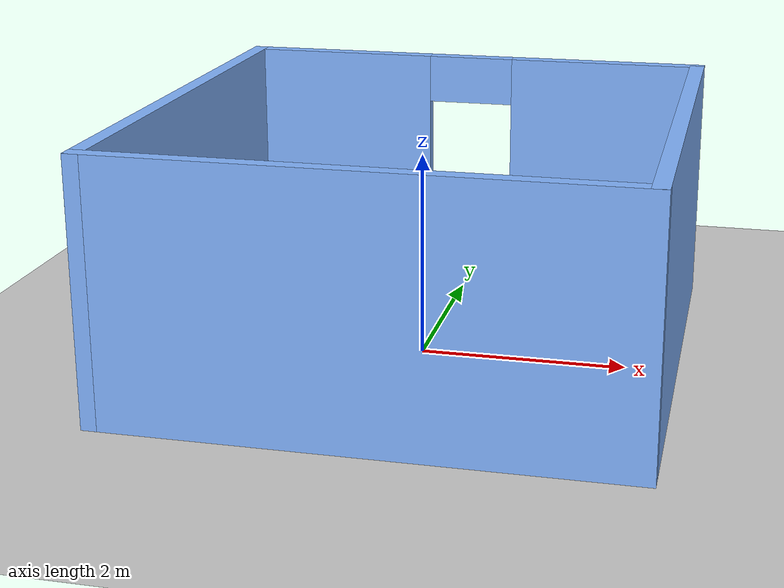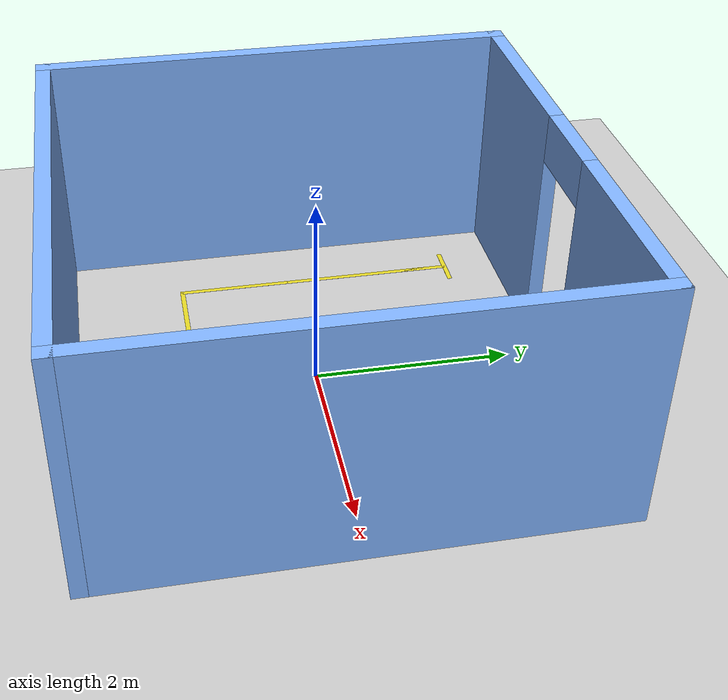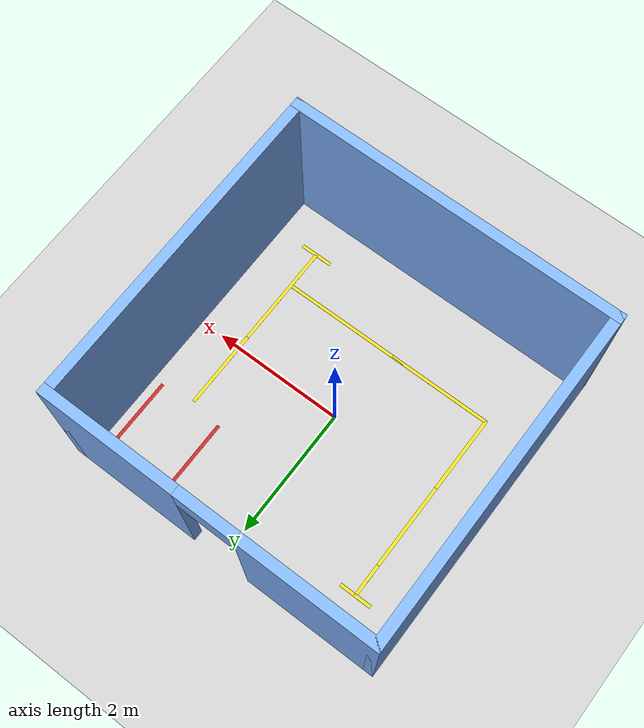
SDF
<sdf version="1.6">
 <world name="default">
  <light name="sun" type="directional">
   <pose>0 0 10 0 -0 0</pose>
   <diffuse>0.8 0.8 0.8 1</diffuse>
   <specular>0.1 0.1 0.1 1</specular>
   <attenuation>
    <range>1000</range>
    <constant>0.9</constant>
    <linear>0.01</linear>
    <quadratic>0.001</quadratic>
   </attenuation>
   <direction>-0.5 0.5 -1</direction>
   <spot><inner_angle>0</inner_angle><outer_angle>0</outer_angle><falloff>0</falloff></spot>
  </light>
  <model name="ground_plane">
   <static>1</static>
   <link name="link">
    <collision name="collision">
     <geometry><plane><normal>0 0 1</normal><size>100 100</size></plane></geometry>
     <surface><friction><ode><mu>100</mu><mu2>50</mu2></ode></friction></surface>
    </collision>
    <visual name="visual">
     <cast_shadows>0</cast_shadows>
     <geometry><plane><normal>0 0 1</normal><size>100 100</size></plane></geometry>
     <material>
      <script><uri>file://media/materials/scripts/gazebo.material</uri><name>Gazebo/Grey</name></script>
     </material>
    </visual>
   </link>
  </model>
  <gravity>0 0 -9.8</gravity>
  <magnetic_field>6e-06 2.3e-05 -4.2e-05</magnetic_field>
  <atmosphere type="adiabatic"/>
  <physics name="default_physics" default="0" type="ode">
   <max_step_size>0.001</max_step_size>
   <real_time_factor>1</real_time_factor>
   <real_time_update_rate>1000</real_time_update_rate>
  </physics>
  <scene><ambient>0.4 0.4 0.4 1</ambient><background>0.7 0.7 0.7 1</background><shadows>1</shadows></scene>
  <spherical_coordinates>
   <surface_model>EARTH_WGS84</surface_model>
   <latitude_deg>0</latitude_deg>
   <longitude_deg>0</longitude_deg>
   <elevation>0</elevation>
   <heading_deg>0</heading_deg>
  </spherical_coordinates>
  <model name="5x52">
   <link name="Wall_0">
    <pose>0 2.425 0 0 -0 0</pose>
    <visual name="Wall_0_Visual_0">
     <pose>-1.47497 0 1.25 0 -0 0</pose>
     <geometry><box><size>2.05005 0.15 2.5</size></box></geometry>
     <material>
      <script><uri>file://media/materials/scripts/gazebo.material</uri><name>Gazebo/Grey</name></script>
      <ambient>0.509804 0.705882 1 1</ambient>
     </material>
    </visual>
    <collision name="Wall_0_Collision_0">
     <geometry><box><size>2.05005 0.15 2.5</size></box></geometry>
     <pose>-1.47497 0 1.25 0 -0 0</pose>
    </collision>
    <visual name="Wall_0_Visual_1">
     <pose>1.47503 0 1.25 0 -0 0</pose>
     <geometry><box><size>2.04995 0.15 2.5</size></box></geometry>
     <material>
      <script><uri>file://media/materials/scripts/gazebo.material</uri><name>Gazebo/Grey</name></script>
      <ambient>0.509804 0.705882 1 1</ambient>
     </material>
    </visual>
    <collision name="Wall_0_Collision_1">
     <geometry><box><size>2.04995 0.15 2.5</size></box></geometry>
     <pose>1.47503 0 1.25 0 -0 0</pose>
    </collision>
    <visual name="Wall_0_Visual_2">
     <pose>5.5e-05 0 2.25 0 -0 0</pose>
     <geometry><box><size>0.9 0.15 0.5</size></box></geometry>
     <material>
      <script><uri>file://media/materials/scripts/gazebo.material</uri><name>Gazebo/Grey</name></script>
      <ambient>0.509804 0.705882 1 1</ambient>
     </material>
    </visual>
    <collision name="Wall_0_Collision_2">
     <geometry><box><size>0.9 0.15 0.5</size></box></geometry>
     <pose>5.5e-05 0 2.25 0 -0 0</pose>
    </collision>
   </link>
   <link name="Wall_1">
    <collision name="Wall_1_Collision">
     <geometry><box><size>5 0.15 2.5</size></box></geometry>
     <pose>0 0 1.25 0 -0 0</pose>
    </collision>
    <visual name="Wall_1_Visual">
     <pose>0 0 1.25 0 -0 0</pose>
     <geometry><box><size>5 0.15 2.5</size></box></geometry>
     <material>
      <script><uri>file://media/materials/scripts/gazebo.material</uri><name>Gazebo/Grey</name></script>
      <ambient>0.509804 0.705882 1 1</ambient>
     </material>
    </visual>
    <pose>2.425 0 0 0 0 -1.5708</pose>
   </link>
   <link name="Wall_2">
    <collision name="Wall_2_Collision">
     <geometry><box><size>5 0.15 2.5</size></box></geometry>
     <pose>0 0 1.25 0 -0 0</pose>
    </collision>
    <visual name="Wall_2_Visual">
     <pose>0 0 1.25 0 -0 0</pose>
     <geometry><box><size>5 0.15 2.5</size></box></geometry>
     <material>
      <script><uri>file://media/materials/scripts/gazebo.material</uri><name>Gazebo/Grey</name></script>
      <ambient>0.509804 0.705882 1 1</ambient>
     </material>
    </visual>
    <pose>0 -2.425 0 0 -0 3.14159</pose>
   </link>
   <link name="Wall_3">
    <collision name="Wall_3_Collision">
     <geometry><box><size>5 0.15 2.5</size></box></geometry>
     <pose>0 0 1.25 0 -0 0</pose>
    </collision>
    <visual name="Wall_3_Visual">
     <pose>0 0 1.25 0 -0 0</pose>
     <geometry><box><size>5 0.15 2.5</size></box></geometry>
     <material>
      <script><uri>file://media/materials/scripts/gazebo.material</uri><name>Gazebo/Grey</name></script>
      <ambient>0.509804 0.705882 1 1</ambient>
     </material>
    </visual>
    <pose>-2.425 0 0 0 -0 1.5708</pose>
   </link>
   <static>1</static>
  </model>
  <model name="oneDemoParking">
   <link name="link_1">
    <inertial>
     <mass>1</mass>
     <inertia>
      <ixx>0.166667</ixx>
      <ixy>0</ixy>
      <ixz>0</ixz>
      <iyy>0.166667</iyy>
      <iyz>0</iyz>
      <izz>0.166667</izz>
     </inertia>
    </inertial>
    <visual name="visual">
     <pose>-0.5 0 0 0 -0 0</pose>
     <geometry><box><size>0.05 1.26 0.001</size></box></geometry>
     <material>
      <lighting>1</lighting>
      <script><uri>file://media/materials/scripts/gazebo.material</uri><name>Gazebo/Red</name></script>
      <shader type="pixel"><normal_map>__default__</normal_map></shader>
     </material>
    </visual>
    <visual name="ModelPreview_3::link_1::visual_3">
     <pose>0 0.605 0 0 -0 0</pose>
     <geometry><box><size>1.05 0.05 0.001</size></box></geometry>
     <material>
      <lighting>1</lighting>
      <script><uri>file://media/materials/scripts/gazebo.material</uri><name>Gazebo/Red</name></script>
      <shader type="pixel"><normal_map>__default__</normal_map></shader>
     </material>
    </visual>
    <visual name="ModelPreview_3::link_1::visual_2">
     <pose>0.5 0 0 0 -0 0</pose>
     <geometry><box><size>0.05 1.26 0.001</size></box></geometry>
     <material>
      <lighting>1</lighting>
      <script><uri>file://media/materials/scripts/gazebo.material</uri><name>Gazebo/Red</name></script>
      <shader type="pixel"><normal_map>__default__</normal_map></shader>
     </material>
    </visual>
    <collision name="collision">
     <pose>-0.5 0 0 0 -0 0</pose>
     <geometry><box><size>0.05 1.26 0.001</size></box></geometry>
     <surface>
      <friction>
       <ode><mu>1</mu><mu2>1</mu2><fdir1>0 0 0</fdir1><slip1>0</slip1><slip2>0</slip2></ode>
       <torsional>
        <coefficient>1</coefficient>
        <patch_radius>0</patch_radius>
        <surface_radius>0</surface_radius>
        <use_patch_radius>1</use_patch_radius>
        <ode><slip>0</slip></ode>
       </torsional>
      </friction>
      <bounce><restitution_coefficient>0</restitution_coefficient><threshold>1e+06</threshold></bounce>
      <contact>
       <collide_without_contact>0</collide_without_contact>
       <collide_without_contact_bitmask>1</collide_without_contact_bitmask>
       <collide_bitmask>1</collide_bitmask>
       <ode>
        <soft_cfm>0</soft_cfm>
        <soft_erp>0.2</soft_erp>
        <kp>1e+13</kp>
        <kd>1</kd>
        <max_vel>0.01</max_vel>
        <min_depth>0</min_depth>
       </ode>
       <bullet>
        <split_impulse>1</split_impulse>
        <split_impulse_penetration_threshold>-0.01</split_impulse_penetration_threshold>
        <soft_cfm>0</soft_cfm>
        <soft_erp>0.2</soft_erp>
        <kp>1e+13</kp>
        <kd>1</kd>
       </bullet>
      </contact>
     </surface>
    </collision>
    <collision name="collision_1">
     <pose>0.5 0 0 0 -0 0</pose>
     <geometry><box><size>0.05 1.26 0.001</size></box></geometry>
     <surface>
      <friction>
       <ode><mu>1</mu><mu2>1</mu2><fdir1>0 0 0</fdir1><slip1>0</slip1><slip2>0</slip2></ode>
       <torsional>
        <coefficient>1</coefficient>
        <patch_radius>0</patch_radius>
        <surface_radius>0</surface_radius>
        <use_patch_radius>1</use_patch_radius>
        <ode><slip>0</slip></ode>
       </torsional>
      </friction>
      <bounce><restitution_coefficient>0</restitution_coefficient><threshold>1e+06</threshold></bounce>
      <contact>
       <collide_without_contact>0</collide_without_contact>
       <collide_without_contact_bitmask>1</collide_without_contact_bitmask>
       <collide_bitmask>1</collide_bitmask>
       <ode>
        <soft_cfm>0</soft_cfm>
        <soft_erp>0.2</soft_erp>
        <kp>1e+13</kp>
        <kd>1</kd>
        <max_vel>0.01</max_vel>
        <min_depth>0</min_depth>
       </ode>
       <bullet>
        <split_impulse>1</split_impulse>
        <split_impulse_penetration_threshold>-0.01</split_impulse_penetration_threshold>
        <soft_cfm>0</soft_cfm>
        <soft_erp>0.2</soft_erp>
        <kp>1e+13</kp>
        <kd>1</kd>
       </bullet>
      </contact>
     </surface>
    </collision>
    <collision name="collision_2">
     <pose>0 0.605 0 0 -0 0</pose>
     <geometry><box><size>1.05 0.05 0.001</size></box></geometry>
     <surface>
      <friction>
       <ode><mu>1</mu><mu2>1</mu2><fdir1>0 0 0</fdir1><slip1>0</slip1><slip2>0</slip2></ode>
       <torsional>
        <coefficient>1</coefficient>
        <patch_radius>0</patch_radius>
        <surface_radius>0</surface_radius>
        <use_patch_radius>1</use_patch_radius>
        <ode><slip>0</slip></ode>
       </torsional>
      </friction>
      <bounce><restitution_coefficient>0</restitution_coefficient><threshold>1e+06</threshold></bounce>
      <contact>
       <collide_without_contact>0</collide_without_contact>
       <collide_without_contact_bitmask>1</collide_without_contact_bitmask>
       <collide_bitmask>1</collide_bitmask>
       <ode>
        <soft_cfm>0</soft_cfm>
        <soft_erp>0.2</soft_erp>
        <kp>1e+13</kp>
        <kd>1</kd>
        <max_vel>0.01</max_vel>
        <min_depth>0</min_depth>
       </ode>
       <bullet>
        <split_impulse>1</split_impulse>
        <split_impulse_penetration_threshold>-0.01</split_impulse_penetration_threshold>
        <soft_cfm>0</soft_cfm>
        <soft_erp>0.2</soft_erp>
        <kp>1e+13</kp>
        <kd>1</kd>
       </bullet>
      </contact>
     </surface>
    </collision>
    <collision name="collision_3">
     <pose>-0 -0.4 0 0 -0 0</pose>
     <geometry><cylinder><radius>0.2</radius><length>0.001</length></cylinder></geometry>
     <surface>
      <friction>
       <ode><mu>1</mu><mu2>1</mu2><fdir1>0 0 0</fdir1><slip1>0</slip1><slip2>0</slip2></ode>
       <torsional>
        <coefficient>1</coefficient>
        <patch_radius>0</patch_radius>
        <surface_radius>0</surface_radius>
        <use_patch_radius>1</use_patch_radius>
        <ode><slip>0</slip></ode>
       </torsional>
      </friction>
      <bounce><restitution_coefficient>0</restitution_coefficient><threshold>1e+06</threshold></bounce>
      <contact>
       <collide_without_contact>0</collide_without_contact>
       <collide_without_contact_bitmask>1</collide_without_contact_bitmask>
       <collide_bitmask>1</collide_bitmask>
       <ode>
        <soft_cfm>0</soft_cfm>
        <soft_erp>0.2</soft_erp>
        <kp>1e+13</kp>
        <kd>1</kd>
        <max_vel>0.01</max_vel>
        <min_depth>0</min_depth>
       </ode>
       <bullet>
        <split_impulse>1</split_impulse>
        <split_impulse_penetration_threshold>-0.01</split_impulse_penetration_threshold>
        <soft_cfm>0</soft_cfm>
        <soft_erp>0.2</soft_erp>
        <kp>1e+13</kp>
        <kd>1</kd>
       </bullet>
      </contact>
     </surface>
    </collision>
   </link>
   <static>1</static>
   <pose>1.7 1.7 0 0 -0 0</pose>
  </model>
  <model name="line120cm">
   <link name="link_1">
    <inertial>
     <mass>1</mass>
     <inertia>
      <ixx>0.166667</ixx>
      <ixy>0</ixy>
      <ixz>0</ixz>
      <iyy>0.166667</iyy>
      <iyz>0</iyz>
      <izz>0.166667</izz>
     </inertia>
    </inertial>
    <visual name="visual">
     <geometry><box><size>1.2 0.05 0.001</size></box></geometry>
     <material>
      <script><uri>file://media/materials/scripts/gazebo.material</uri><name>Gazebo/Yellow</name></script>
     </material>
    </visual>
    <collision name="collision">
     <geometry><box><size>1.2 0.05 1e-05</size></box></geometry>
     <surface>
      <friction>
       <ode><mu>1</mu><mu2>1</mu2><fdir1>0 0 0</fdir1><slip1>0</slip1><slip2>0</slip2></ode>
       <torsional>
        <coefficient>1</coefficient>
        <patch_radius>0</patch_radius>
        <surface_radius>0</surface_radius>
        <use_patch_radius>1</use_patch_radius>
        <ode><slip>0</slip></ode>
       </torsional>
      </friction>
      <bounce><restitution_coefficient>0</restitution_coefficient><threshold>1e+06</threshold></bounce>
      <contact>
       <collide_without_contact>0</collide_without_contact>
       <collide_without_contact_bitmask>1</collide_without_contact_bitmask>
       <collide_bitmask>1</collide_bitmask>
       <ode>
        <soft_cfm>0</soft_cfm>
        <soft_erp>0.2</soft_erp>
        <kp>1e+13</kp>
        <kd>1</kd>
        <max_vel>0.01</max_vel>
        <min_depth>0</min_depth>
       </ode>
       <bullet>
        <split_impulse>1</split_impulse>
        <split_impulse_penetration_threshold>-0.01</split_impulse_penetration_threshold>
        <soft_cfm>0</soft_cfm>
        <soft_erp>0.2</soft_erp>
        <kp>1e+13</kp>
        <kd>1</kd>
       </bullet>
      </contact>
     </surface>
    </collision>
   </link>
   <static>1</static>
   <pose>1.7 0.4 0 0 -0 1.571</pose>
  </model>
  <model name="line160cm">
   <link name="link_1">
    <inertial>
     <mass>1</mass>
     <inertia>
      <ixx>0.166667</ixx>
      <ixy>0</ixy>
      <ixz>0</ixz>
      <iyy>0.166667</iyy>
      <iyz>0</iyz>
      <izz>0.166667</izz>
     </inertia>
    </inertial>
    <visual name="visual">
     <geometry><box><size>1.6 0.05 0.001</size></box></geometry>
     <material>
      <script><uri>file://media/materials/scripts/gazebo.material</uri><name>Gazebo/Yellow</name></script>
     </material>
    </visual>
    <collision name="collision">
     <geometry><box><size>1.6 0.05 1e-05</size></box></geometry>
     <surface>
      <friction>
       <ode><mu>1</mu><mu2>1</mu2><fdir1>0 0 0</fdir1><slip1>0</slip1><slip2>0</slip2></ode>
       <torsional>
        <coefficient>1</coefficient>
        <patch_radius>0</patch_radius>
        <surface_radius>0</surface_radius>
        <use_patch_radius>1</use_patch_radius>
        <ode><slip>0</slip></ode>
       </torsional>
      </friction>
      <bounce><restitution_coefficient>0</restitution_coefficient><threshold>1e+06</threshold></bounce>
      <contact>
       <collide_without_contact>0</collide_without_contact>
       <collide_without_contact_bitmask>1</collide_without_contact_bitmask>
       <collide_bitmask>1</collide_bitmask>
       <ode>
        <soft_cfm>0</soft_cfm>
        <soft_erp>0.2</soft_erp>
        <kp>1e+13</kp>
        <kd>1</kd>
        <max_vel>0.01</max_vel>
        <min_depth>0</min_depth>
       </ode>
       <bullet>
        <split_impulse>1</split_impulse>
        <split_impulse_penetration_threshold>-0.01</split_impulse_penetration_threshold>
        <soft_cfm>0</soft_cfm>
        <soft_erp>0.2</soft_erp>
        <kp>1e+13</kp>
        <kd>1</kd>
       </bullet>
      </contact>
     </surface>
    </collision>
   </link>
   <static>1</static>
   <pose>1.7 -1 0 0 -0 1.571</pose>
  </model>
  <model name="line50cm">
   <link name="link_1">
    <inertial>
     <mass>1</mass>
     <inertia>
      <ixx>0.166667</ixx>
      <ixy>0</ixy>
      <ixz>0</ixz>
      <iyy>0.166667</iyy>
      <iyz>0</iyz>
      <izz>0.166667</izz>
     </inertia>
    </inertial>
    <visual name="visual">
     <geometry><box><size>0.05 0.5 0.001</size></box></geometry>
     <material>
      <script><uri>file://media/materials/scripts/gazebo.material</uri><name>Gazebo/Yellow</name></script>
     </material>
    </visual>
    <collision name="collision">
     <geometry><box><size>0.05 0.5 1e-05</size></box></geometry>
     <surface>
      <friction>
       <ode><mu>1</mu><mu2>1</mu2><fdir1>0 0 0</fdir1><slip1>0</slip1><slip2>0</slip2></ode>
       <torsional>
        <coefficient>1</coefficient>
        <patch_radius>0</patch_radius>
        <surface_radius>0</surface_radius>
        <use_patch_radius>1</use_patch_radius>
        <ode><slip>0</slip></ode>
       </torsional>
      </friction>
      <bounce><restitution_coefficient>0</restitution_coefficient><threshold>1e+06</threshold></bounce>
      <contact>
       <collide_without_contact>0</collide_without_contact>
       <collide_without_contact_bitmask>1</collide_without_contact_bitmask>
       <collide_bitmask>1</collide_bitmask>
       <ode>
        <soft_cfm>0</soft_cfm>
        <soft_erp>0.2</soft_erp>
        <kp>1e+13</kp>
        <kd>1</kd>
        <max_vel>0.01</max_vel>
        <min_depth>0</min_depth>
       </ode>
       <bullet>
        <split_impulse>1</split_impulse>
        <split_impulse_penetration_threshold>-0.01</split_impulse_penetration_threshold>
        <soft_cfm>0</soft_cfm>
        <soft_erp>0.2</soft_erp>
        <kp>1e+13</kp>
        <kd>1</kd>
       </bullet>
      </contact>
     </surface>
    </collision>
   </link>
   <static>1</static>
   <pose>1.7 -1.8 0 0 -0 1.571</pose>
  </model>
  <model name="line2m">
   <link name="link_0">
    <inertial>
     <mass>1</mass>
     <inertia>
      <ixx>0.166667</ixx>
      <ixy>0</ixy>
      <ixz>0</ixz>
      <iyy>0.166667</iyy>
      <iyz>0</iyz>
      <izz>0.166667</izz>
     </inertia>
    </inertial>
    <visual name="visual">
     <geometry><box><size>2 0.05 0.001</size></box></geometry>
     <material>
      <lighting>1</lighting>
      <script><uri>file://media/materials/scripts/gazebo.material</uri><name>Gazebo/Yellow</name></script>
     </material>
    </visual>
    <collision name="collision">
     <geometry><box><size>2 0.05 1e-05</size></box></geometry>
     <surface>
      <friction>
       <ode><mu>1</mu><mu2>1</mu2><fdir1>0 0 0</fdir1><slip1>0</slip1><slip2>0</slip2></ode>
       <torsional>
        <coefficient>1</coefficient>
        <patch_radius>0</patch_radius>
        <surface_radius>0</surface_radius>
        <use_patch_radius>1</use_patch_radius>
        <ode><slip>0</slip></ode>
       </torsional>
      </friction>
      <bounce><restitution_coefficient>0</restitution_coefficient><threshold>1e+06</threshold></bounce>
      <contact>
       <collide_without_contact>0</collide_without_contact>
       <collide_without_contact_bitmask>1</collide_without_contact_bitmask>
       <collide_bitmask>1</collide_bitmask>
       <ode>
        <soft_cfm>0</soft_cfm>
        <soft_erp>0.2</soft_erp>
        <kp>1e+13</kp>
        <kd>1</kd>
        <max_vel>0.01</max_vel>
        <min_depth>0</min_depth>
       </ode>
       <bullet>
        <split_impulse>1</split_impulse>
        <split_impulse_penetration_threshold>-0.01</split_impulse_penetration_threshold>
        <soft_cfm>0</soft_cfm>
        <soft_erp>0.2</soft_erp>
        <kp>1e+13</kp>
        <kd>1</kd>
       </bullet>
      </contact>
     </surface>
    </collision>
   </link>
   <static>1</static>
   <pose>0.7 -1.2 0 0 -0 0</pose>
  </model>
  <model name="line120cm_0">
   <link name="link_1">
    <inertial>
     <mass>1</mass>
     <inertia>
      <ixx>0.166667</ixx>
      <ixy>0</ixy>
      <ixz>0</ixz>
      <iyy>0.166667</iyy>
      <iyz>0</iyz>
      <izz>0.166667</izz>
     </inertia>
    </inertial>
    <visual name="visual">
     <geometry><box><size>1.2 0.05 0.001</size></box></geometry>
     <material>
      <script><uri>file://media/materials/scripts/gazebo.material</uri><name>Gazebo/Yellow</name></script>
     </material>
    </visual>
    <collision name="collision">
     <geometry><box><size>1.2 0.05 1e-05</size></box></geometry>
     <surface>
      <friction>
       <ode><mu>1</mu><mu2>1</mu2><fdir1>0 0 0</fdir1><slip1>0</slip1><slip2>0</slip2></ode>
       <torsional>
        <coefficient>1</coefficient>
        <patch_radius>0</patch_radius>
        <surface_radius>0</surface_radius>
        <use_patch_radius>1</use_patch_radius>
        <ode><slip>0</slip></ode>
       </torsional>
      </friction>
      <bounce><restitution_coefficient>0</restitution_coefficient><threshold>1e+06</threshold></bounce>
      <contact>
       <collide_without_contact>0</collide_without_contact>
       <collide_without_contact_bitmask>1</collide_without_contact_bitmask>
       <collide_bitmask>1</collide_bitmask>
       <ode>
        <soft_cfm>0</soft_cfm>
        <soft_erp>0.2</soft_erp>
        <kp>1e+13</kp>
        <kd>1</kd>
        <max_vel>0.01</max_vel>
        <min_depth>0</min_depth>
       </ode>
       <bullet>
        <split_impulse>1</split_impulse>
        <split_impulse_penetration_threshold>-0.01</split_impulse_penetration_threshold>
        <soft_cfm>0</soft_cfm>
        <soft_erp>0.2</soft_erp>
        <kp>1e+13</kp>
        <kd>1</kd>
       </bullet>
      </contact>
     </surface>
    </collision>
   </link>
   <static>1</static>
   <pose>-1.7 -0.62 0 0 -0 1.571</pose>
  </model>
  <model name="line160cm_0">
   <link name="link_1">
    <inertial>
     <mass>1</mass>
     <inertia>
      <ixx>0.166667</ixx>
      <ixy>0</ixy>
      <ixz>0</ixz>
      <iyy>0.166667</iyy>
      <iyz>0</iyz>
      <izz>0.166667</izz>
     </inertia>
    </inertial>
    <visual name="visual">
     <geometry><box><size>1.6 0.05 0.001</size></box></geometry>
     <material>
      <script><uri>file://media/materials/scripts/gazebo.material</uri><name>Gazebo/Yellow</name></script>
     </material>
    </visual>
    <collision name="collision">
     <geometry><box><size>1.6 0.05 1e-05</size></box></geometry>
     <surface>
      <friction>
       <ode><mu>1</mu><mu2>1</mu2><fdir1>0 0 0</fdir1><slip1>0</slip1><slip2>0</slip2></ode>
       <torsional>
        <coefficient>1</coefficient>
        <patch_radius>0</patch_radius>
        <surface_radius>0</surface_radius>
        <use_patch_radius>1</use_patch_radius>
        <ode><slip>0</slip></ode>
       </torsional>
      </friction>
      <bounce><restitution_coefficient>0</restitution_coefficient><threshold>1e+06</threshold></bounce>
      <contact>
       <collide_without_contact>0</collide_without_contact>
       <collide_without_contact_bitmask>1</collide_without_contact_bitmask>
       <collide_bitmask>1</collide_bitmask>
       <ode>
        <soft_cfm>0</soft_cfm>
        <soft_erp>0.2</soft_erp>
        <kp>1e+13</kp>
        <kd>1</kd>
        <max_vel>0.01</max_vel>
        <min_depth>0</min_depth>
       </ode>
       <bullet>
        <split_impulse>1</split_impulse>
        <split_impulse_penetration_threshold>-0.01</split_impulse_penetration_threshold>
        <soft_cfm>0</soft_cfm>
        <soft_erp>0.2</soft_erp>
        <kp>1e+13</kp>
        <kd>1</kd>
       </bullet>
      </contact>
     </surface>
    </collision>
   </link>
   <static>1</static>
   <pose>-0.9 -1.2 0 0 -0 0</pose>
  </model>
  <model name="line50cm_clone">
   <link name="link_1">
    <inertial>
     <mass>1</mass>
     <inertia>
      <ixx>0.166667</ixx>
      <ixy>0</ixy>
      <ixz>0</ixz>
      <iyy>0.166667</iyy>
      <iyz>0</iyz>
      <izz>0.166667</izz>
     </inertia>
    </inertial>
    <visual name="visual">
     <geometry><box><size>0.05 0.5 0.001</size></box></geometry>
     <material>
      <script><uri>file://media/materials/scripts/gazebo.material</uri><name>Gazebo/Yellow</name></script>
     </material>
    </visual>
    <collision name="collision">
     <geometry><box><size>0.05 0.5 1e-05</size></box></geometry>
     <surface>
      <friction>
       <ode><mu>1</mu><mu2>1</mu2><fdir1>0 0 0</fdir1><slip1>0</slip1><slip2>0</slip2></ode>
       <torsional>
        <coefficient>1</coefficient>
        <patch_radius>0</patch_radius>
        <surface_radius>0</surface_radius>
        <use_patch_radius>1</use_patch_radius>
        <ode><slip>0</slip></ode>
       </torsional>
      </friction>
      <bounce><restitution_coefficient>0</restitution_coefficient><threshold>1e+06</threshold></bounce>
      <contact>
       <collide_without_contact>0</collide_without_contact>
       <collide_without_contact_bitmask>1</collide_without_contact_bitmask>
       <collide_bitmask>1</collide_bitmask>
       <ode>
        <soft_cfm>0</soft_cfm>
        <soft_erp>0.2</soft_erp>
        <kp>1e+13</kp>
        <kd>1</kd>
        <max_vel>0.01</max_vel>
        <min_depth>0</min_depth>
       </ode>
       <bullet>
        <split_impulse>1</split_impulse>
        <split_impulse_penetration_threshold>-0.01</split_impulse_penetration_threshold>
        <soft_cfm>0</soft_cfm>
        <soft_erp>0.2</soft_erp>
        <kp>1e+13</kp>
        <kd>1</kd>
       </bullet>
      </contact>
     </surface>
    </collision>
   </link>
   <static>1</static>
   <pose>-1.7 1.8 0 0 -0 1.571</pose>
  </model>
  <model name="line160cm_1">
   <link name="link_1">
    <inertial>
     <mass>1</mass>
     <inertia>
      <ixx>0.166667</ixx>
      <ixy>0</ixy>
      <ixz>0</ixz>
      <iyy>0.166667</iyy>
      <iyz>0</iyz>
      <izz>0.166667</izz>
     </inertia>
    </inertial>
    <visual name="visual">
     <geometry><box><size>1.6 0.05 0.001</size></box></geometry>
     <material>
      <script><uri>file://media/materials/scripts/gazebo.material</uri><name>Gazebo/Yellow</name></script>
     </material>
    </visual>
    <collision name="collision">
     <geometry><box><size>1.6 0.05 1e-05</size></box></geometry>
     <surface>
      <friction>
       <ode><mu>1</mu><mu2>1</mu2><fdir1>0 0 0</fdir1><slip1>0</slip1><slip2>0</slip2></ode>
       <torsional>
        <coefficient>1</coefficient>
        <patch_radius>0</patch_radius>
        <surface_radius>0</surface_radius>
        <use_patch_radius>1</use_patch_radius>
        <ode><slip>0</slip></ode>
       </torsional>
      </friction>
      <bounce><restitution_coefficient>0</restitution_coefficient><threshold>1e+06</threshold></bounce>
      <contact>
       <collide_without_contact>0</collide_without_contact>
       <collide_without_contact_bitmask>1</collide_without_contact_bitmask>
       <collide_bitmask>1</collide_bitmask>
       <ode>
        <soft_cfm>0</soft_cfm>
        <soft_erp>0.2</soft_erp>
        <kp>1e+13</kp>
        <kd>1</kd>
        <max_vel>0.01</max_vel>
        <min_depth>0</min_depth>
       </ode>
       <bullet>
        <split_impulse>1</split_impulse>
        <split_impulse_penetration_threshold>-0.01</split_impulse_penetration_threshold>
        <soft_cfm>0</soft_cfm>
        <soft_erp>0.2</soft_erp>
        <kp>1e+13</kp>
        <kd>1</kd>
       </bullet>
      </contact>
     </surface>
    </collision>
   </link>
   <static>1</static>
   <pose>-1.7 0.776888 0 0 -0 1.571</pose>
  </model>
  <model name="line50cm_0">
   <link name="link_1">
    <inertial>
     <mass>1</mass>
     <inertia>
      <ixx>0.166667</ixx>
      <ixy>0</ixy>
      <ixz>0</ixz>
      <iyy>0.166667</iyy>
      <iyz>0</iyz>
      <izz>0.166667</izz>
     </inertia>
    </inertial>
    <visual name="visual">
     <geometry><box><size>0.05 0.5 0.001</size></box></geometry>
     <material>
      <script><uri>file://media/materials/scripts/gazebo.material</uri><name>Gazebo/Yellow</name></script>
     </material>
    </visual>
    <collision name="collision">
     <geometry><box><size>0.05 0.5 1e-05</size></box></geometry>
     <surface>
      <friction>
       <ode><mu>1</mu><mu2>1</mu2><fdir1>0 0 0</fdir1><slip1>0</slip1><slip2>0</slip2></ode>
       <torsional>
        <coefficient>1</coefficient>
        <patch_radius>0</patch_radius>
        <surface_radius>0</surface_radius>
        <use_patch_radius>1</use_patch_radius>
        <ode><slip>0</slip></ode>
       </torsional>
      </friction>
      <bounce><restitution_coefficient>0</restitution_coefficient><threshold>1e+06</threshold></bounce>
      <contact>
       <collide_without_contact>0</collide_without_contact>
       <collide_without_contact_bitmask>1</collide_without_contact_bitmask>
       <collide_bitmask>1</collide_bitmask>
       <ode>
        <soft_cfm>0</soft_cfm>
        <soft_erp>0.2</soft_erp>
        <kp>1e+13</kp>
        <kd>1</kd>
        <max_vel>0.01</max_vel>
        <min_depth>0</min_depth>
       </ode>
       <bullet>
        <split_impulse>1</split_impulse>
        <split_impulse_penetration_threshold>-0.01</split_impulse_penetration_threshold>
        <soft_cfm>0</soft_cfm>
        <soft_erp>0.2</soft_erp>
        <kp>1e+13</kp>
        <kd>1</kd>
       </bullet>
      </contact>
     </surface>
    </collision>
   </link>
   <static>1</static>
   <pose>-1.7 1.55 0 0 -0 0</pose>
  </model>
  <audio><device>default</device></audio>
 </world>
</sdf>
